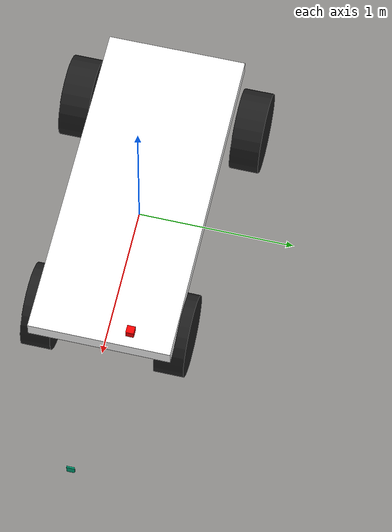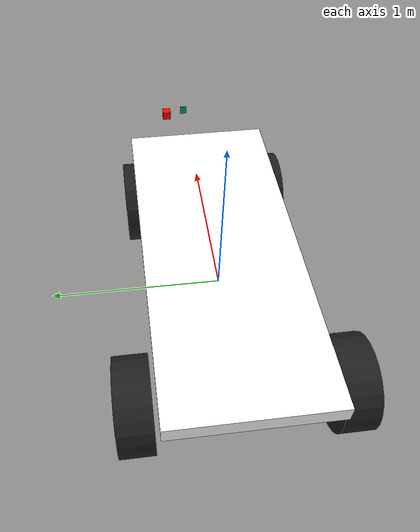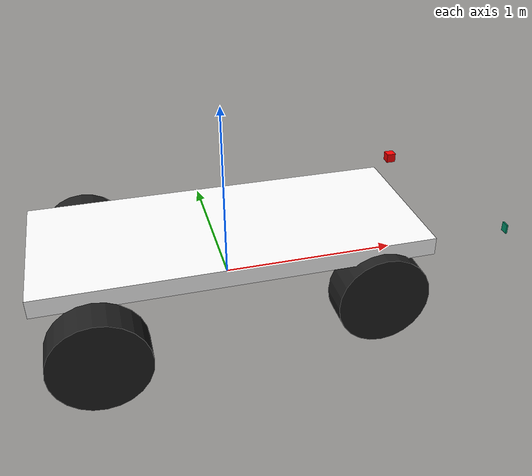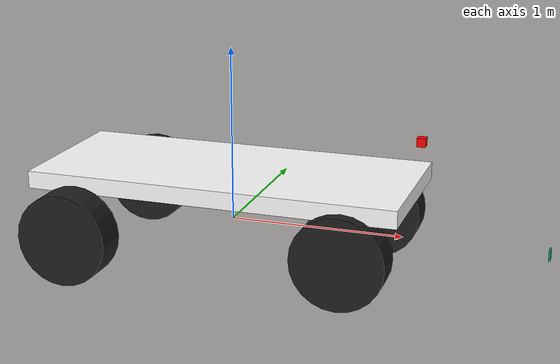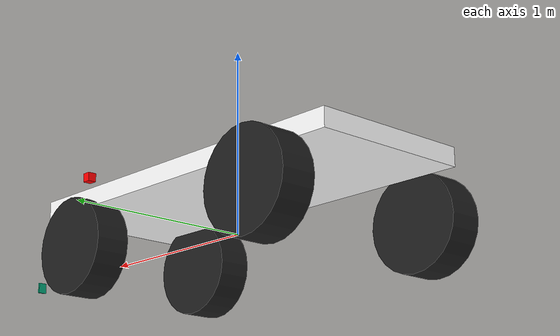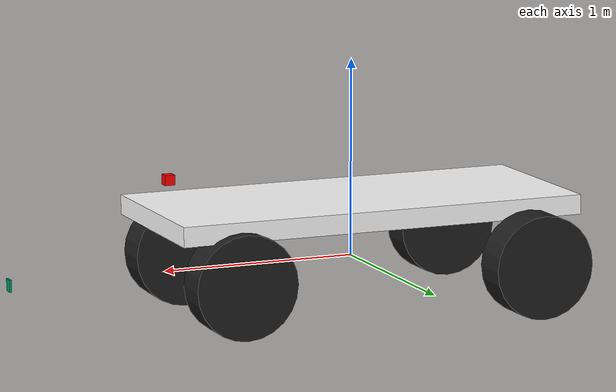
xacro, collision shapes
<?xml version="1.0"?>

<robot  xmlns:xacro="http://www.ros.org/wiki/xacro"
        xmlns:sensor="http://playerstage.sourceforge.net/gazebo/xmlschema/#sensor"
        xmlns:controller="http://playerstage.sourceforge.net/gazebo/xmlschema/#controller"
        xmlns:interface="http://playerstage.sourceforge.net/gazebo/xmlschema/#interface"
  name="robot1_xacro">

  <!-- Car properties !!! Y is forward-->
  <xacro:property name="base_mass" value="20" /> <!-- in kg-->
  <xacro:property name="base_x_size" value="2.130" />   <!-- x is mhkos forward -->
  <xacro:property name="base_y_size" value="0.8935" />   <!-- y is platos -->
  <xacro:property name="base_z_size" value="0.1" /><!-- z is ipsos -->
  <!-- Wheels -->
  <xacro:property name="wheel_mass" value="2" /> <!-- in kg-->
  <xacro:property name="length_wheel" value="0.190" />
  <xacro:property name="radius_wheel" value="0.261" />
  <!-- OFFSETS -->
  <xacro:property name="x_offset" value="0.7625" /> <!-- metaksonio -->
  <xacro:property name="y_offset" value="0.5652" /> <!-- metatroxio -->
  <xacro:property name="z_offset" value="${radius_wheel - 0.0001}" /> <!-- diafora ipsous chassis me rodes -->

  <macro name="box_inertia" params="m x y z">
    <inertia  ixx="${m*(y*y+z*z)/12}" ixy = "0" ixz = "0"
              iyy="${m*(x*x+z*z)/12}" iyz = "0"
              izz="${m*(x*x+z*z)/12}" />
  </macro>

  <macro name="cylinder_inertia" params="m r h">
    <inertia  ixx="${m*(3*r*r+h*h)/12}" ixy = "0" ixz = "0"
              iyy="${m*(3*r*r+h*h)/12}" iyz = "0"
              izz="${m*r*r/2}" />
  </macro>

  <link name="base_footprint">  <!-- used because KDL doesnt not support a root link with an inertia -->
    <visual>
      <geometry>
        <box size="0.001 0.001 0.001"/>
      </geometry>
      <origin rpy="0 0 0" xyz="0 0 0"/>
    </visual>
  </link>

  <gazebo reference="base_footprint">
    <material>Gazebo/Green</material>
    <turnGravityOff>false</turnGravityOff>
  </gazebo>

  <joint name="base_footprint_joint" type="fixed">
    <origin xyz="0 0 0" />
    <parent link="base_footprint" />
    <child link="base_link" />
  </joint>

  <link name="base_link">
    <visual>
      <geometry>
        <box size="0.001 0.001 0.001"/>
      </geometry>
      <origin rpy="0 0 0" xyz="0 0 0"/>
      <material name="white">
        <color rgba="1 1 1 1"/>
      </material>
    </visual>
    <collision>
      <origin rpy="0 0 0" xyz="0 0 ${radius_wheel}"/>
      <geometry>
        <box size="${base_x_size} ${base_y_size} ${base_z_size}"/>
      </geometry>
    </collision>
    <inertial>
      <mass value="1" />
      <origin xyz="0 0 0" />
      <!--The 3x3 rotational inertia matrix. -->
      <box_inertia  m="1" x="1" y="1" z="1"/>
    </inertial>
  </link>

  <link name ="chassis"> <!--The mesh of the car -->
    <visual>
      <geometry>
        <mesh filename="package://car_description/meshes/whole_car.stl" scale ="0.001 0.001 0.001"/>
      </geometry>
      <origin rpy="0 0 0" xyz="0 0 0"/>
    </visual>
    <collision>
      <origin rpy="0 0 0" xyz="0 0 ${radius_wheel}"/>
      <geometry>
        <box size="0.001 0.001 0.001"/>
      </geometry>
    </collision>
    <inertial>
      <mass value="1" />
      <origin xyz="0 0 0" />
      <!--The 3x3 rotational inertia matrix. -->
      <box_inertia  m="1" x="1" y="1" z="1"/>
    </inertial>
  </link>

  <link name="wheel_br">
    <visual>
      <geometry>
        <mesh filename="package://car_description/meshes/wheel.stl" />
      </geometry>
      <origin rpy="0 0 0" xyz="0 0 0"/>
      <material name="black"/>
    </visual>
    <collision>
      <origin rpy="1.5707 0 0" xyz="0 0 0"/>
        <geometry>
          <cylinder length="${length_wheel}" radius="${radius_wheel}"/>
        </geometry>
      </collision>
    <inertial>
      <mass value="${wheel_mass}" />
      <origin xyz="0 0 0" />
      <cylinder_inertia  m="${wheel_mass}" r="${radius_wheel}" h="${length_wheel}" />
    </inertial>
  </link>

  <link name="wheel_bl">
    <visual>
      <geometry>
        <mesh filename="package://car_description/meshes/wheel.stl" />
      </geometry>
      <origin rpy="0 0 0" xyz="0 0 0"/>
      <material name="black"/>
    </visual>
    <collision>
      <origin rpy="1.5707 0 0" xyz="0 0 0"/>
      <geometry>
        <cylinder length="${length_wheel}" radius="${radius_wheel}"/>
      </geometry>
    </collision>
    <inertial>
      <mass value="${wheel_mass}" />
      <origin xyz="0 0 0" />
      <cylinder_inertia  m="${wheel_mass}" r="${radius_wheel}" h="${length_wheel}" />
    </inertial>
  </link>

  <link name="wheel_fr">
  <visual>
    <geometry>
      <mesh filename="package://car_description/meshes/wheel.stl" />
    </geometry>
    <origin rpy="0 0 0" xyz="0 0 0"/>
    <material name="black"/>
  </visual>
  <collision>
    <origin rpy="1.5707 0 0" xyz="0 0 0"/>
    <geometry>
      <cylinder length="${length_wheel}" radius="${radius_wheel}"/>
    </geometry>
  </collision>
  <inertial>
    <mass value="${wheel_mass}" />
    <origin xyz="0 0 0" />
    <cylinder_inertia  m="${wheel_mass}" r="${radius_wheel}" h="${length_wheel}" />
  </inertial>
  </link>

  <link name="wheel_fl">
    <visual>
      <geometry>
        <mesh filename="package://car_description/meshes/wheel.stl" />
      </geometry>
      <origin rpy="0 0 0" xyz="0 0 0"/>
      <material name="black"/>
    </visual>
    <collision>
      <origin rpy="1.5707 0 0" xyz="0 0 0"/>
      <geometry>
        <cylinder length="${length_wheel}" radius="${radius_wheel}"/>
      </geometry>
    </collision>
    <inertial>
      <mass value="${wheel_mass}" />
      <origin xyz="0 0 0" />
      <cylinder_inertia  m="${wheel_mass}" r="${radius_wheel}" h="${length_wheel}" />
    </inertial>
  </link>
  <xacro:include filename="$(find car_description)/urdf/robot.gazebo" />

  <link name="turner_right">
    <visual>
      <geometry>
        <box size="0.000005 0.000005 .000005"/>
      </geometry>
      <origin rpy="0 0 0" xyz="0 0 0"/>
      <material name="red">
        <color rgba="1 0 0 1"/>
      </material>
    </visual>
    <collision>
      <geometry>
        <box size="0.05 0.05 .005"/>
      </geometry>
    </collision>
    <inertial>
      <mass value="1" />
      <origin xyz="0 0 0" />
      <!--The 3x3 rotational inertia matrix. -->
      <box_inertia  m="1" x="0.05" y="0.4" z="0.05"/>
    </inertial>
  </link>

  <link name="turner_left">
    <visual>
      <geometry>
        <box size="0.00005 0.00005 .000005"/>
      </geometry>
      <origin rpy="0 0 0" xyz="0 0 0"/>
      <material name="red">
        <color rgba="1 0 0 1"/>
      </material>
    </visual>
    <collision>
      <geometry>
        <box size="0.05 0.05 .005"/>
      </geometry>
    </collision>
    <inertial>
      <mass value="1" />
      <origin xyz="0 0 0" />
      <!--The 3x3 rotational inertia matrix. -->
      <box_inertia  m="1" x="0.0000005" y="0.0000005" z="0.0000005"/>
    </inertial>
  </link>

  <joint name="Turner_right_position_joint" type="revolute">
    <limit effort="1" velocity="1" lower="-0.4" upper="0.4"/>
    <parent link="base_link"/>
    <axis xyz="0 0 1" />
    <child link="turner_right"/>
    <origin rpy="0 0 0" xyz="${x_offset} ${y_offset * 0.75} 0"/>
  </joint>

  <joint name="Turner_left_position_joint" type="revolute">
    <limit effort="1" velocity="1" lower="-0.4" upper="0.4"/>
    <parent link="base_link"/>
    <axis xyz="0 0 1" />
    <child link="turner_left"/>
    <origin rpy="0 0 0" xyz="${x_offset} -${y_offset * 0.75} 0"/>
  </joint>

  <joint name="BackWheel_right_joint" type="continuous">
    <parent link="base_link"/>
    <axis xyz="0 1 0" />
    <child link="wheel_br"/>
    <origin rpy="0 0 0" xyz="-${x_offset} ${y_offset} 0"/>
  </joint>

  <joint name="BackWheel_left_joint" type="continuous">
    <parent link="base_link"/>
    <axis xyz="0 1 0" />
    <child link="wheel_bl"/>
    <origin rpy="0 0 0" xyz="-${x_offset} -${y_offset} 0"/>
  </joint>

  <!-- non controllable joints -->
  <joint name="base_to_chassis" type="fixed">
    <parent link="base_link"/>
    <axis xyz="0 0 1" />
    <child link="chassis"/>
    <origin rpy="0 0 0" xyz="0.8 0 -0.1"/>
  </joint>

  <joint name="Front_right_wheel_joint" type="continuous">
    <parent link="turner_right"/>
    <axis xyz="0 1 0" />
    <child link="wheel_fr"/>
    <origin rpy="0 0 0" xyz="0 0 0"/>
  </joint>

  <joint name="Front_left_wheel_joint" type="continuous">
    <parent link="turner_left"/>
    <axis xyz="0 1 0" />
    <child link="wheel_fl"/>
    <origin rpy="0 0 0" xyz="0 0 0"/>
  </joint>

  <!-- transmission -->
  <transmission name="Turner_right_position_controller">
    <type>transmission_interface/SimpleTransmission</type>
    <actuator name="motor1">
      <mechanicalReduction>0</mechanicalReduction>
    </actuator>
    <joint name="Turner_right_position_joint">
      <hardwareInterface>hardware_interface/EffortJointInterface</hardwareInterface>
    </joint>
  </transmission>

  <transmission name="Turner_left_position_controller">
    <type>transmission_interface/SimpleTransmission</type>
    <actuator name="motor3">
      <mechanicalReduction>0</mechanicalReduction>
    </actuator>
    <joint name="Turner_left_position_joint">
      <hardwareInterface>hardware_interface/EffortJointInterface</hardwareInterface>
    </joint>
  </transmission>

  <transmission name="BackWheel_right_velocity_controller">
    <type>transmission_interface/SimpleTransmission</type>
    <actuator name="motor4">
      <mechanicalReduction>0</mechanicalReduction>
    </actuator>
    <joint name="BackWheel_right_joint">
      <hardwareInterface>hardware_interface/EffortJointInterface</hardwareInterface>
    </joint>
  </transmission>

  <transmission name="BackWheel_left_velocity_controller">
    <type>transmission_interface/SimpleTransmission</type>
    <actuator name="motor5">
      <mechanicalReduction>0</mechanicalReduction>
    </actuator>
    <joint name="BackWheel_left_joint">
      <hardwareInterface>hardware_interface/EffortJointInterface</hardwareInterface>
    </joint>
  </transmission>
  <!-- transmission for non controllable joints-->

  <transmission name="Front_left_wheel_controller">
    <type>transmission_interface/SimpleTransmission</type>
    <actuator name="motor6">
      <mechanicalReduction>0</mechanicalReduction>
    </actuator>
    <joint name="Front_left_wheel_joint">
      <hardwareInterface>hardware_interface/EffortJointInterface</hardwareInterface>
    </joint>
  </transmission>

  <transmission name="Front_right_wheel_controller">
    <type>transmission_interface/SimpleTransmission</type>
    <actuator name="motor7">
      <mechanicalReduction>0</mechanicalReduction>
    </actuator>
    <joint name="Front_right_wheel_joint">
      <hardwareInterface>hardware_interface/EffortJointInterface</hardwareInterface>
    </joint>
  </transmission>

<!--SENSORS -->
<!-- Camera joint -->
  <joint name="camera_joint" type="fixed">
    <axis xyz="0 1 0" />
    <origin xyz="1.050 0.2 0.5" rpy="0 0 0"/>
    <parent link="base_link"/>
    <child link="camera_link"/>
  </joint>

  <!-- Camera -->
  <link name="camera_link">
    <collision>
      <origin xyz="0 0 0" rpy="0 0 0"/>
      <geometry>
        <box size="0.05 0.05 0.05"/>
      </geometry>
    </collision>

    <visual>
      <origin xyz="0 0 0" rpy="0 0 0"/>
      <geometry>
        <box size="0.05 0.05 0.05"/>
      </geometry>
      <material name="red">
        <color rgba="1 0 0 1"/>
      </material>
    </visual>

    <inertial>
      <mass value="1e-5" />
      <origin xyz="0 0 0" rpy="0 0 0"/>
      <inertia ixx="1e-6" ixy="0" ixz="0" iyy="1e-6" iyz="0" izz="1e-6" />
    </inertial>
  </link>

  <!-- Hokuyo joint -->
  <joint name="hokuyo_joint" type="fixed">
    <origin xyz="1.8 0.0 0.0" rpy="0 0 0"/>
    <parent link="base_link"/>
    <axis xyz="0 1 0" />
    <child link="hokuyo_link"/>
  </joint>

  <!-- Hokuyo Laser -->
  <link name="hokuyo_link">
    <collision>
      <origin xyz="0 0 0" rpy="0 0 0"/>
      <geometry>
        <box size="0.01 -0.05 0.06"/>
      </geometry>
    </collision>

    <visual>
      <origin xyz="0 -0.05 0.06" rpy="0 0 0"/>
      <geometry>
        <mesh filename="package://car_description/meshes/hokuyo.dae"/>
      </geometry>
    </visual>

    <inertial>
      <mass value="1e-5" />
      <origin xyz="0 0 0" rpy="0 0 0"/>
      <inertia ixx="1e-6" ixy="0" ixz="0" iyy="1e-6" iyz="0" izz="1e-6" />
    </inertial>
  </link>

  <!-- IMU -->
  <joint name="imu_joint" type="fixed">
    <axis xyz="1 0 0"/>
    <origin xyz="0 0 0.19"/>
    <parent link="base_link"/>
    <child link="imu_link"/>
  </joint>

  <link name="imu_link">
    <inertial>
      <mass value="0.001"/>
      <origin rpy="0 0 0" xyz="0 0 0"/>
      <inertia ixx="0.0001" ixy="0" ixz="0" iyy="0.000001" iyz="0" izz="0.0001"/>
    </inertial>
    <visual>
      <origin rpy="0 0 0" xyz="0 0 0"/>
      <geometry>
        <box size="0.001 0.001 0.001"/>
      </geometry>
    </visual>
    <collision>
      <origin rpy="0 0 0" xyz="0 0 0"/>
      <geometry>
        <box size=".001 .001 .001"/>
      </geometry>
    </collision>
  </link>

</robot>
